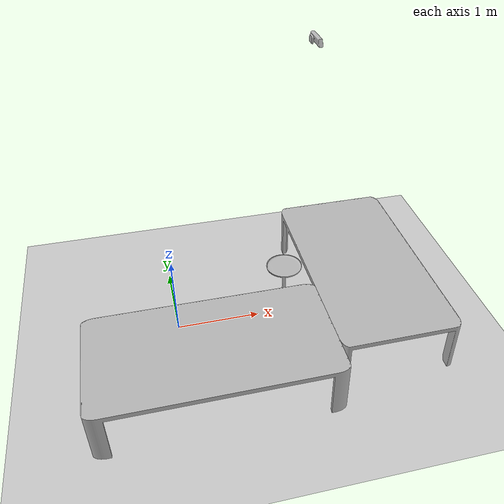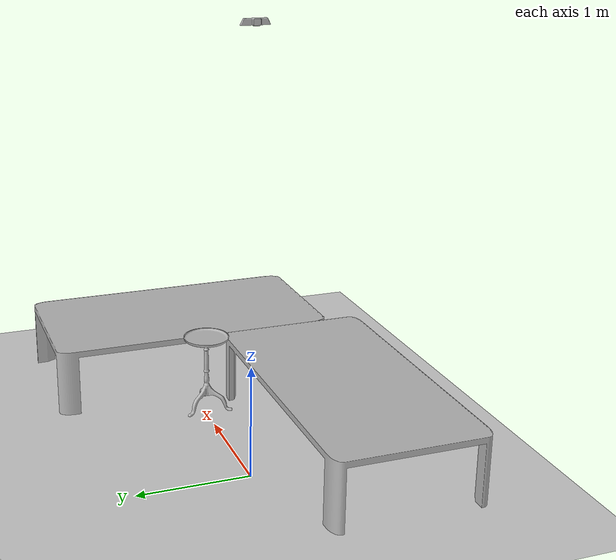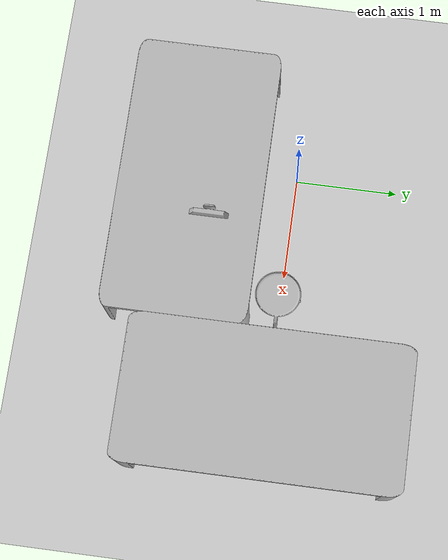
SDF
<sdf version="1.7">
 <world name="default">
  <light name="sun" type="directional">
   <pose>0 0 10 0 -0 0</pose>
   <diffuse>0.8 0.8 0.8 1</diffuse>
   <specular>0.2 0.2 0.2 1</specular>
   <attenuation>
    <range>1000</range>
    <constant>0.9</constant>
    <linear>0.01</linear>
    <quadratic>0.001</quadratic>
   </attenuation>
   <direction>-0.5 0.1 -0.9</direction>
   <spot><inner_angle>0</inner_angle><outer_angle>0</outer_angle><falloff>0</falloff></spot>
  </light>
  <model name="ground_plane">
   <static>1</static>
   <link name="link">
    <collision name="collision">
     <geometry><plane><normal>0 0 1</normal><size>100 100</size></plane></geometry>
     <surface>
      <contact><collide_bitmask>65535</collide_bitmask></contact>
      <friction><ode><mu>100</mu><mu2>50</mu2></ode></friction>
     </surface>
    </collision>
    <visual name="visual">
     <cast_shadows>0</cast_shadows>
     <geometry><plane><normal>0 0 1</normal><size>100 100</size></plane></geometry>
     <material>
      <script><uri>file://media/materials/scripts/gazebo.material</uri><name>Gazebo/Grey</name></script>
     </material>
    </visual>
   </link>
  </model>
  <gravity>0 0 -9.8</gravity>
  <magnetic_field>6e-06 2.3e-05 -4.2e-05</magnetic_field>
  <atmosphere type="adiabatic"/>
  <physics type="ode">
   <max_step_size>0.001</max_step_size>
   <real_time_factor>1</real_time_factor>
   <real_time_update_rate>1000</real_time_update_rate>
  </physics>
  <scene><ambient>0.4 0.4 0.4 1</ambient><background>0.7 0.7 0.7 1</background><shadows>1</shadows></scene>
  <spherical_coordinates>
   <surface_model>EARTH_WGS84</surface_model>
   <latitude_deg>0</latitude_deg>
   <longitude_deg>0</longitude_deg>
   <elevation>0</elevation>
   <heading_deg>0</heading_deg>
  </spherical_coordinates>
  <model name="robot_base">
   <static>1</static>
   <link name="link">
    <pose>0 0 0.73 0 -0 0</pose>
    <collision name="surface">
     <pose>0 0 -0.015 0 -0 0</pose>
     <geometry><box><size>2.35 1 0.03</size></box></geometry>
    </collision>
    <visual name="visual">
     <geometry><mesh><uri>model://robot_base/meshes/robot_base.dae</uri></mesh></geometry>
    </visual>
   </link>
   <pose>1.32612 -0.027179 0 0 -0 0</pose>
  </model>
  <model name="table_new">
   <static>1</static>
   <link name="link">
    <collision name="collision">
     <geometry><mesh><uri>model://table_new/meshes/table_new.stl</uri><scale>2 2 2</scale></mesh></geometry>
    </collision>
    <visual name="visual">
     <geometry><mesh><uri>model://table_new/meshes/table_new.stl</uri><scale>2 2 2</scale></mesh></geometry>
    </visual>
   </link>
   <pose>0.276393 -0.985835 0 0 -0 0</pose>
  </model>
  <model name="table_new_0">
   <static>1</static>
   <link name="link">
    <collision name="collision">
     <geometry><mesh><uri>model://table_new/meshes/table_new.stl</uri><scale>2 2 2</scale></mesh></geometry>
    </collision>
    <visual name="visual">
     <geometry><mesh><uri>model://table_new/meshes/table_new.stl</uri><scale>2 2 2</scale></mesh></geometry>
    </visual>
   </link>
   <pose>2.31832 -0.03048 0 0 0 -1.56929</pose>
  </model>
  <model name="kinect">
   <pose>1.43917 -0.535406 3.57354 3.14159 1.55728 3.14159</pose>
   <link name="link">
    <inertial><mass>0.1</mass></inertial>
    <collision name="collision"><geometry><box><size>0.073 0.276 0.072</size></box></geometry></collision>
    <visual name="visual"><geometry><mesh><uri>model://kinect/meshes/kinect.dae</uri></mesh></geometry></visual>
    <sensor name="camera" type="depth">
     <update_rate>20</update_rate>
     <camera>
      <horizontal_fov>1.0472</horizontal_fov>
      <image><width>640</width><height>480</height><format>R8G8B8</format></image>
      <clip><near>0.05</near><far>3</far></clip>
     </camera>
     <plugin name="camera_plugin" filename="libgazebo_ros_openni_kinect.so">
      <baseline>0.2</baseline>
      <alwaysOn>1</alwaysOn>
      <updateRate>0.0</updateRate>
      <cameraName>camera_ir</cameraName>
      <imageTopicName>/camera/color/image_raw</imageTopicName>
      <cameraInfoTopicName>/camera/color/camera_info</cameraInfoTopicName>
      <depthImageTopicName>/camera/depth/image_raw</depthImageTopicName>
      <depthImageCameraInfoTopicName>/camera/depth/camera_info</depthImageCameraInfoTopicName>
      <pointCloudTopicName>/camera/depth/points</pointCloudTopicName>
      <frameName>camera_link</frameName>
      <pointCloudCutoff>0.5</pointCloudCutoff>
      <pointCloudCutoffMax>3.0</pointCloudCutoffMax>
      <distortionK1>0</distortionK1>
      <distortionK2>0</distortionK2>
      <distortionK3>0</distortionK3>
      <distortionT1>0</distortionT1>
      <distortionT2>0</distortionT2>
      <CxPrime>0</CxPrime>
      <Cx>0</Cx>
      <Cy>0</Cy>
      <focalLength>0</focalLength>
      <hackBaseline>0</hackBaseline>
     </plugin>
    </sensor>
   </link>
   <static>1</static>
  </model>
 </world>
</sdf>
